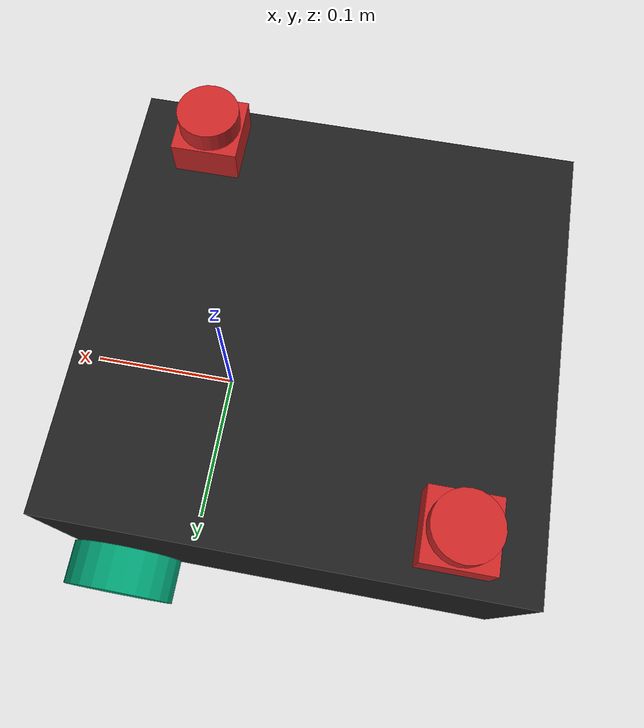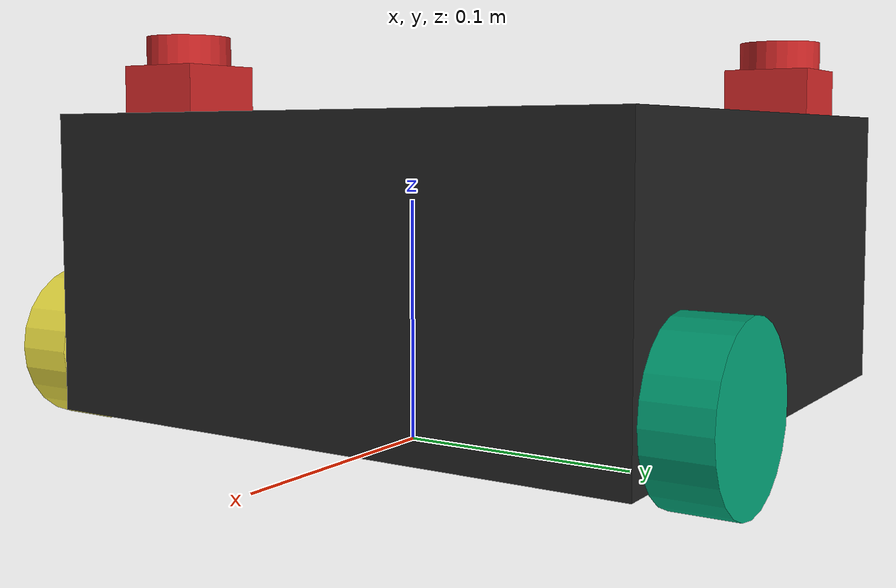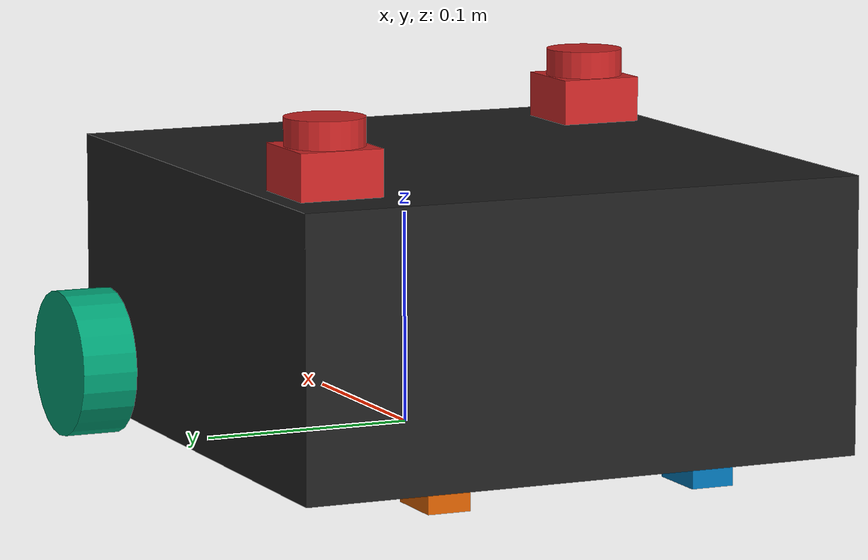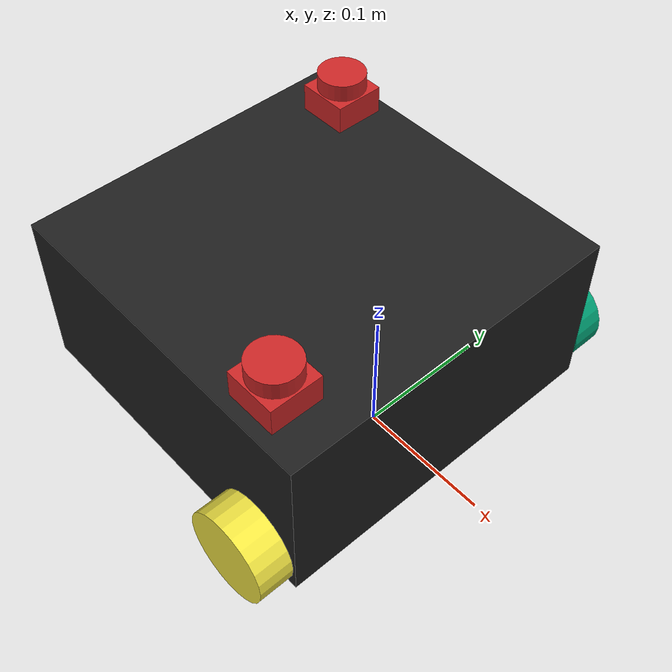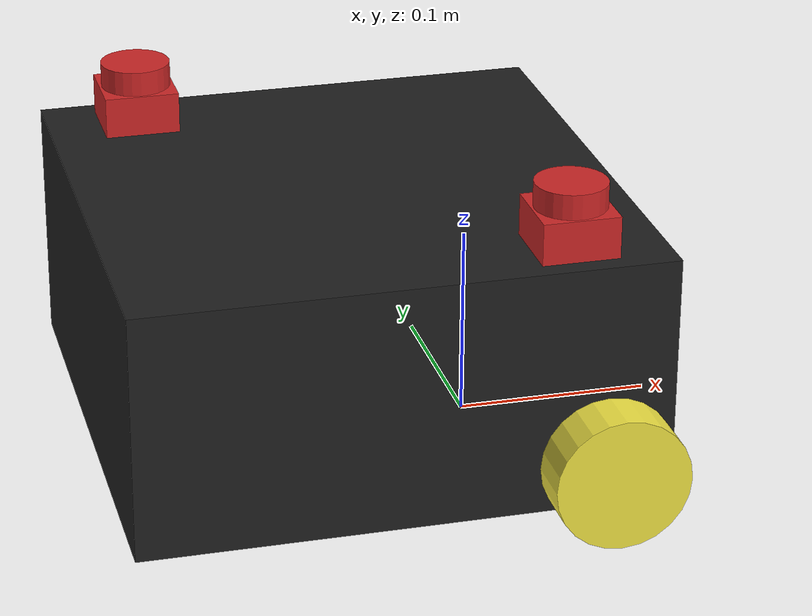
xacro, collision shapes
<?xml version="1.0" ?>
<robot name="chassis_base" xmlns:xacro="http://ros.org/wiki/xacro">
  <xacro:arg name="namespace" default=""/>
  <xacro:property name="namespace" value="$(arg namespace)"/>
  <!-- base_linkから天板上面までの高さ(実測)。LiDARとアーム台座はこの面に載る。 -->
  <xacro:property name="chassis_top_z" value="0.1266"/>
  <!-- 実測。base_linkは下段の板の下面(床から9.45mm)、車軸は床から車輪半径の高さ。 -->
  <xacro:property name="base_link_z" value="0.00945"/>
  <xacro:property name="wheel_radius" value="0.034"/>
  <xacro:property name="wheel_width" value="0.026"/>

  <link name="base_footprint"/>

  <joint name="base_joint" type="fixed">
    <parent link="base_footprint"/>
    <child link="base_link" />
    <origin xyz="0 0 ${base_link_z}" rpy="0 0 0"/>
  </joint>

  <link name="base_link">
    <visual>
      <origin xyz="-0.064 0 0.0" rpy="0 0 0"/>
      <geometry>
        <mesh filename="package://amr_description/meshes/chassis_base.stl" scale="0.001 0.001 0.001"/>
      </geometry>
      <material name="light_black"/>
    </visual>

    <collision>
      <origin xyz="-0.064 0 ${chassis_top_z / 2}" rpy="0 0 0"/>
      <geometry>
        <box size="0.266 0.266 ${chassis_top_z}"/>
      </geometry>
    </collision>

    <inertial>
      <origin xyz="0 0 0" rpy="0 0 0"/>
      <mass value="1.3729096e+00"/>
      <inertia ixx="8.7002718e-03" ixy="-4.7576583e-05" ixz="1.1160499e-04"
               iyy="8.6195418e-03" iyz="-3.5422299e-06"
               izz="1.4612727e-02" />
    </inertial>
  </link>

  <joint name="${namespace}wheel_left_joint" type="continuous">
    <parent link="${namespace}base_link"/>
    <child link="${namespace}wheel_left_link"/>
    <origin xyz="0.035 0.1475 ${wheel_radius - base_link_z}" rpy="-1.57 0 0"/>
    <axis xyz="0 0 1"/>
  </joint>

  <link name="${namespace}wheel_left_link">
    <visual>
      <!-- Waffleのタイヤメッシュ(直径66mm・幅18.2mm、mmで幅がy)を実機の車輪の大きさへ拡大する。 -->
      <origin xyz="0 0 0" rpy="1.57 0 0"/>
      <geometry>
        <mesh filename="package://amr_description/meshes/left_tire.stl" scale="${wheel_radius / 33} ${wheel_width / 18.2} ${wheel_radius / 33}"/>
      </geometry>
      <material name="dark"/>
    </visual>

    <collision>
      <origin xyz="0 0 0" rpy="0 0 0"/>
      <geometry>
        <cylinder length="${wheel_width}" radius="${wheel_radius}"/>
      </geometry>
    </collision>

    <inertial>
      <origin xyz="0 0 0" />
      <mass value="2.8498940e-02" />
      <inertia ixx="1.1175580e-05" ixy="-4.2369783e-11" ixz="-5.9381719e-09"
               iyy="1.1192413e-05" iyz="-1.4400107e-11"
               izz="2.0712558e-05" />
      </inertial>
  </link>

  <joint name="${namespace}wheel_right_joint" type="continuous">
    <parent link="${namespace}base_link"/>
    <child link="${namespace}wheel_right_link"/>
    <origin xyz="0.035 -0.1475 ${wheel_radius - base_link_z}" rpy="-1.57 0 0"/>
    <axis xyz="0 0 1"/>
  </joint>

  <link name="${namespace}wheel_right_link">
    <visual>
      <origin xyz="0 0 0" rpy="1.57 0 0"/>
      <geometry>
        <mesh filename="package://amr_description/meshes/right_tire.stl" scale="${wheel_radius / 33} ${wheel_width / 18.2} ${wheel_radius / 33}"/>
      </geometry>
      <material name="dark"/>
    </visual>

    <collision>
      <origin xyz="0 0 0" rpy="0 0 0"/>
      <geometry>
        <cylinder length="${wheel_width}" radius="${wheel_radius}"/>
      </geometry>
    </collision>

    <inertial>
      <origin xyz="0 0 0" />
      <mass value="2.8498940e-02" />
      <inertia ixx="1.1175580e-05" ixy="-4.2369783e-11" ixz="-5.9381719e-09"
               iyy="1.1192413e-05" iyz="-1.4400107e-11"
               izz="2.0712558e-05" />
      </inertial>
  </link>

  <joint name="${namespace}caster_back_right_joint" type="fixed">
    <parent link="${namespace}base_link"/>
    <child link="${namespace}caster_back_right_link"/>
    <origin xyz="-0.177 -0.064 -0.004" rpy="-1.57 0 0"/>
  </joint>

  <link name="${namespace}caster_back_right_link">
    <collision>
      <origin xyz="0 0.001 0" rpy="0 0 0"/>
      <geometry>
        <box size="0.030 0.009 0.020"/>
      </geometry>
    </collision>

    <inertial>
      <origin xyz="0 0 0" />
      <mass value="0.005" />
      <inertia ixx="0.001" ixy="0.0" ixz="0.0"
               iyy="0.001" iyz="0.0"
               izz="0.001" />
    </inertial>
  </link>

  <joint name="${namespace}caster_back_left_joint" type="fixed">
    <parent link="${namespace}base_link"/>
    <child link="${namespace}caster_back_left_link"/>
    <origin xyz="-0.177 0.064 -0.004" rpy="-1.57 0 0"/>
  </joint>

  <link name="${namespace}caster_back_left_link">
    <collision>
      <origin xyz="0 0.001 0" rpy="0 0 0"/>
      <geometry>
        <box size="0.030 0.009 0.020"/>
      </geometry>
    </collision>

    <inertial>
      <origin xyz="0 0 0" />
      <mass value="0.005" />
      <inertia ixx="0.001" ixy="0.0" ixz="0.0"
               iyy="0.001" iyz="0.0"
               izz="0.001" />
    </inertial>
  </link>

  <joint name="${namespace}imu_joint" type="fixed">
    <parent link="${namespace}base_link"/>
    <child link="${namespace}imu_link"/>
    <origin xyz="-0.11 0 0.09" rpy="0 0 ${pi}"/>
  </joint>

  <link name="${namespace}imu_link">
    <visual>
      <origin xyz="0 0 0" rpy="0 0 0"/>
      <geometry>
        <box size="0.0212 0.0164 0.0033"/>
      </geometry>
      <material name="blue"/>
    </visual>
  </link>

  <xacro:include filename="t_mini_plus_12.urdf.xacro" />
  <xacro:t_mini_plus_12 name="${namespace}lidar_front_right" parent="${namespace}base_link"
                        xyz="0.022 -0.104 ${chassis_top_z}" rpy="0 0 0"/>
  <xacro:t_mini_plus_12 name="${namespace}lidar_rear_left" parent="${namespace}base_link"
                        xyz="-0.150 0.104 ${chassis_top_z}" rpy="0 0 ${pi}"/>

</robot>

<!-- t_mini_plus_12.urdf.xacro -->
<robot xmlns:xacro="http://ros.org/wiki/xacro">

  <!-- https://www.ydlidar.com/static/upload/file/20260615/1781510293384466.pdf -->
  <xacro:macro name="t_mini_plus_12" params="name parent xyz rpy">
    <joint name="${name}_joint" type="fixed">
      <origin xyz="${xyz}" rpy="${rpy}"/>
      <parent link="${parent}"/>
      <child link="${name}_link"/>
    </joint>

    <link name="${name}_link">
      <visual>
        <origin xyz="0 0 0" rpy="0 0 0"/>
        <geometry>
          <mesh filename="package://amr_description/meshes/lidar.stl" scale="0.001 0.001 0.001"/>
        </geometry>
        <material name="red"/>
      </visual>
      <collision>
        <origin xyz="0 0 0.0106" rpy="0 0 0"/>
        <geometry>
          <box size="0.0386 0.0386 0.0212"/>
        </geometry>
      </collision>
      <collision>
        <origin xyz="0 0 0.02755" rpy="0 0 0"/>
        <geometry>
          <cylinder length="0.0127" radius="0.0181"/>
        </geometry>
      </collision>
    </link>

    <joint name="${name}_scan_joint" type="fixed">
      <origin xyz="0 0 0" rpy="0 0 0"/>
      <parent link="${name}_link"/>
      <child link="${name}_scan"/>
    </joint>
    <link name="${name}_scan"/>
  </xacro:macro>

</robot>
